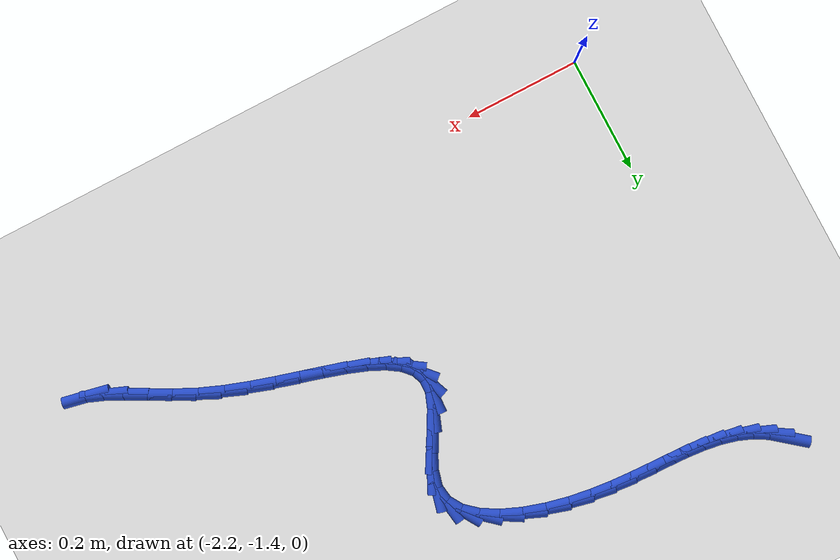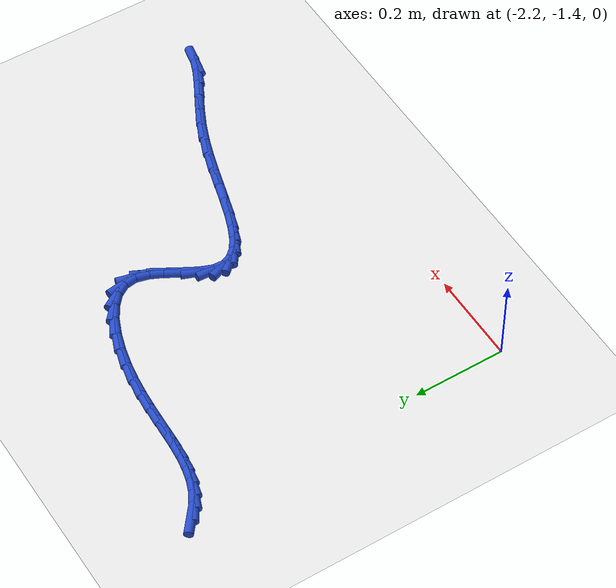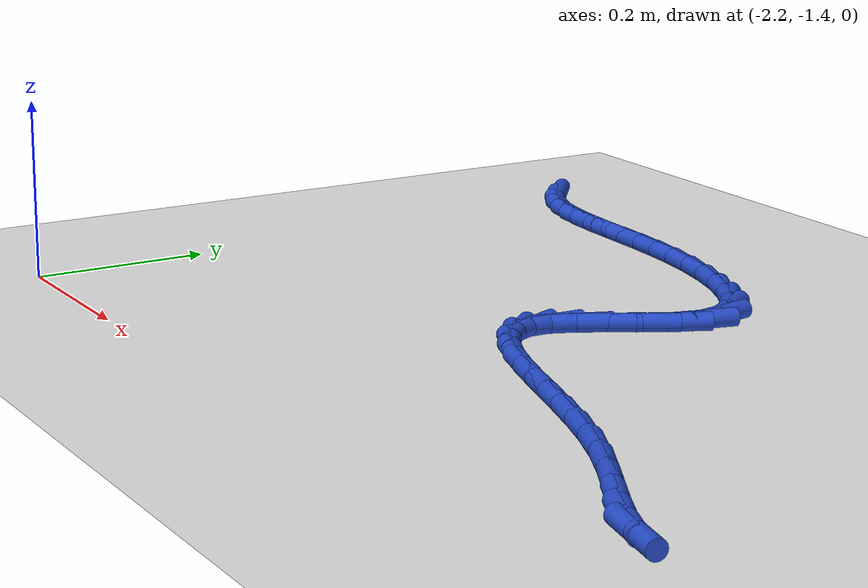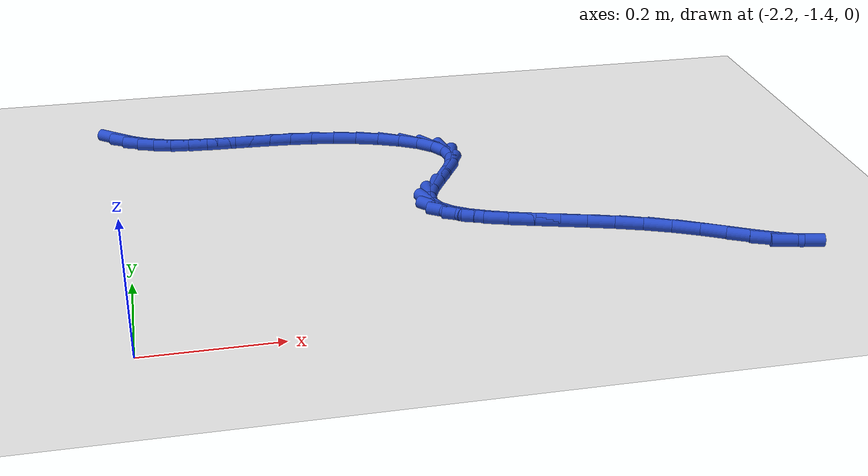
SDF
<sdf version="1.6">
 <world name="default">
  <model name="ground_plane">
   <static>1</static>
   <link name="link">
    <collision name="collision">
     <geometry><plane><normal>0 0 1</normal><size>100 100</size></plane></geometry>
     <surface><friction><ode><mu>100</mu><mu2>50</mu2></ode></friction></surface>
    </collision>
    <visual name="visual">
     <cast_shadows>0</cast_shadows>
     <geometry><plane><normal>0 0 1</normal><size>100 100</size></plane></geometry>
     <material>
      <script><uri>file://media/materials/scripts/gazebo.material</uri><name>Gazebo/WhiteGlow</name></script>
     </material>
    </visual>
   </link>
  </model>
  <model name="line">
   <link name="link_144">
    <pose>-2.215456086362121 -0.6869322025722284 0.01 0 1.57 -0.6803128797783314</pose>
    <collision name="collision">
     <geometry><cylinder><radius>0.01</radius><length>0.08</length></cylinder></geometry>
    </collision>
    <visual name="visual">
     <material>
      <script><name>Gazebo/Blue</name><uri>file://media/materials/scripts/gazebo.material</uri></script>
     </material>
     <geometry><cylinder><radius>0.01</radius><length>0.08</length></cylinder></geometry>
    </visual>
   </link>
   <link name="link_145">
    <pose>-2.193583747144123 -0.7046308398941936 0.01 0 1.57 -0.5238025363237142</pose>
    <collision name="collision">
     <geometry><cylinder><radius>0.01</radius><length>0.08</length></cylinder></geometry>
    </collision>
    <visual name="visual">
     <material>
      <script><name>Gazebo/Blue</name><uri>file://media/materials/scripts/gazebo.material</uri></script>
     </material>
     <geometry><cylinder><radius>0.01</radius><length>0.08</length></cylinder></geometry>
    </visual>
   </link>
   <link name="link_146">
    <pose>-2.169927128006402 -0.7182954231309067 0.01 0 1.57 -0.372703559304144</pose>
    <collision name="collision">
     <geometry><cylinder><radius>0.01</radius><length>0.08</length></cylinder></geometry>
    </collision>
    <visual name="visual">
     <material>
      <script><name>Gazebo/Blue</name><uri>file://media/materials/scripts/gazebo.material</uri></script>
     </material>
     <geometry><cylinder><radius>0.01</radius><length>0.08</length></cylinder></geometry>
    </visual>
   </link>
   <link name="link_147">
    <pose>-2.1445650753523373 -0.7282113950630461 0.01 0 1.57 -0.24759357513335906</pose>
    <collision name="collision">
     <geometry><cylinder><radius>0.01</radius><length>0.08</length></cylinder></geometry>
    </collision>
    <visual name="visual">
     <material>
      <script><name>Gazebo/Blue</name><uri>file://media/materials/scripts/gazebo.material</uri></script>
     </material>
     <geometry><cylinder><radius>0.01</radius><length>0.08</length></cylinder></geometry>
    </visual>
   </link>
   <link name="link_148">
    <pose>-2.117559276078067 -0.7350379255356329 0.01 0 1.57 -0.1527567664056015</pose>
    <collision name="collision">
     <geometry><cylinder><radius>0.01</radius><length>0.08</length></cylinder></geometry>
    </collision>
    <visual name="visual">
     <material>
      <script><name>Gazebo/Blue</name><uri>file://media/materials/scripts/gazebo.material</uri></script>
     </material>
     <geometry><cylinder><radius>0.01</radius><length>0.08</length></cylinder></geometry>
    </visual>
   </link>
   <link name="link_149">
    <pose>-2.088971185064976 -0.7394392375803858 0.01 0 1.57 -0.08746840076644627</pose>
    <collision name="collision">
     <geometry><cylinder><radius>0.01</radius><length>0.08</length></cylinder></geometry>
    </collision>
    <visual name="visual">
     <material>
      <script><name>Gazebo/Blue</name><uri>file://media/materials/scripts/gazebo.material</uri></script>
     </material>
     <geometry><cylinder><radius>0.01</radius><length>0.08</length></cylinder></geometry>
    </visual>
   </link>
   <link name="link_150">
    <pose>-2.058862257194445 -0.7420795542290238 0.01 0 1.57 -0.04885646311759033</pose>
    <collision name="collision">
     <geometry><cylinder><radius>0.01</radius><length>0.08</length></cylinder></geometry>
    </collision>
    <visual name="visual">
     <material>
      <script><name>Gazebo/Blue</name><uri>file://media/materials/scripts/gazebo.material</uri></script>
     </material>
     <geometry><cylinder><radius>0.01</radius><length>0.08</length></cylinder></geometry>
    </visual>
   </link>
   <link name="link_151">
    <pose>-2.027293947347857 -0.7436230985132661 0.01 0 1.57 -0.03368824391982004</pose>
    <collision name="collision">
     <geometry><cylinder><radius>0.01</radius><length>0.08</length></cylinder></geometry>
    </collision>
    <visual name="visual">
     <material>
      <script><name>Gazebo/Blue</name><uri>file://media/materials/scripts/gazebo.material</uri></script>
     </material>
     <geometry><cylinder><radius>0.01</radius><length>0.08</length></cylinder></geometry>
    </visual>
   </link>
   <link name="link_152">
    <pose>-1.994327710406596 -0.7447340934648318 0.01 0 1.57 -0.03912179598383189</pose>
    <collision name="collision">
     <geometry><cylinder><radius>0.01</radius><length>0.08</length></cylinder></geometry>
    </collision>
    <visual name="visual">
     <material>
      <script><name>Gazebo/Blue</name><uri>file://media/materials/scripts/gazebo.material</uri></script>
     </material>
     <geometry><cylinder><radius>0.01</radius><length>0.08</length></cylinder></geometry>
    </visual>
   </link>
   <link name="link_153">
    <pose>-1.9600250012520442 -0.7460767621154396 0.01 0 1.57 -0.06283758000488113</pose>
    <collision name="collision">
     <geometry><cylinder><radius>0.01</radius><length>0.08</length></cylinder></geometry>
    </collision>
    <visual name="visual">
     <material>
      <script><name>Gazebo/Blue</name><uri>file://media/materials/scripts/gazebo.material</uri></script>
     </material>
     <geometry><cylinder><radius>0.01</radius><length>0.08</length></cylinder></geometry>
    </visual>
   </link>
   <link name="link_154">
    <pose>-1.924447274765584 -0.7483153274968087 0.01 0 1.57 -0.10288501286515214</pose>
    <collision name="collision">
     <geometry><cylinder><radius>0.01</radius><length>0.08</length></cylinder></geometry>
    </collision>
    <visual name="visual">
     <material>
      <script><name>Gazebo/Blue</name><uri>file://media/materials/scripts/gazebo.material</uri></script>
     </material>
     <geometry><cylinder><radius>0.01</radius><length>0.08</length></cylinder></geometry>
    </visual>
   </link>
   <link name="link_155">
    <pose>-1.8876559858285988 -0.7521140126406582 0.01 0 1.57 -0.15742337600626916</pose>
    <collision name="collision">
     <geometry><cylinder><radius>0.01</radius><length>0.08</length></cylinder></geometry>
    </collision>
    <visual name="visual">
     <material>
      <script><name>Gazebo/Blue</name><uri>file://media/materials/scripts/gazebo.material</uri></script>
     </material>
     <geometry><cylinder><radius>0.01</radius><length>0.08</length></cylinder></geometry>
    </visual>
   </link>
   <link name="link_156">
    <pose>-1.8497126623891103 -0.7581370153663469 0.01 0 1.57 -0.2233830736094657</pose>
    <collision name="collision">
     <geometry><cylinder><radius>0.01</radius><length>0.08</length></cylinder></geometry>
    </collision>
    <visual name="visual">
     <material>
      <script><name>Gazebo/Blue</name><uri>file://media/materials/scripts/gazebo.material</uri></script>
     </material>
     <geometry><cylinder><radius>0.01</radius><length>0.08</length></cylinder></geometry>
    </visual>
   </link>
   <link name="link_157">
    <pose>-1.8110523506170368 -0.7669196473705909 0.01 0 1.57 -0.2996834063995351</pose>
    <collision name="collision">
     <geometry><cylinder><radius>0.01</radius><length>0.08</length></cylinder></geometry>
    </collision>
    <visual name="visual">
     <material>
      <script><name>Gazebo/Blue</name><uri>file://media/materials/scripts/gazebo.material</uri></script>
     </material>
     <geometry><cylinder><radius>0.01</radius><length>0.08</length></cylinder></geometry>
    </visual>
   </link>
   <link name="link_158">
    <pose>-1.7733529294045047 -0.778568368740549 0.01 0 1.57 -0.39555358926352757</pose>
    <collision name="collision">
     <geometry><cylinder><radius>0.01</radius><length>0.08</length></cylinder></geometry>
    </collision>
    <visual name="visual">
     <material>
      <script><name>Gazebo/Blue</name><uri>file://media/materials/scripts/gazebo.material</uri></script>
     </material>
     <geometry><cylinder><radius>0.01</radius><length>0.08</length></cylinder></geometry>
    </visual>
   </link>
   <link name="link_159">
    <pose>-1.7385504474257985 -0.7931005555501898 0.01 0 1.57 -0.5268492853697296</pose>
    <collision name="collision">
     <geometry><cylinder><radius>0.01</radius><length>0.08</length></cylinder></geometry>
    </collision>
    <visual name="visual">
     <material>
      <script><name>Gazebo/Blue</name><uri>file://media/materials/scripts/gazebo.material</uri></script>
     </material>
     <geometry><cylinder><radius>0.01</radius><length>0.08</length></cylinder></geometry>
    </visual>
   </link>
   <link name="link_160">
    <pose>-1.7085809533552017 -0.8105335838734826 0.01 0 1.57 -0.7200698999718345</pose>
    <collision name="collision">
     <geometry><cylinder><radius>0.01</radius><length>0.08</length></cylinder></geometry>
    </collision>
    <visual name="visual">
     <material>
      <script><name>Gazebo/Blue</name><uri>file://media/materials/scripts/gazebo.material</uri></script>
     </material>
     <geometry><cylinder><radius>0.01</radius><length>0.08</length></cylinder></geometry>
    </visual>
   </link>
   <link name="link_161">
    <pose>-1.6853804958669993 -0.8308848297843958 0.01 0 1.57 -1.0140179977187882</pose>
    <collision name="collision">
     <geometry><cylinder><radius>0.01</radius><length>0.08</length></cylinder></geometry>
    </collision>
    <visual name="visual">
     <material>
      <script><name>Gazebo/Blue</name><uri>file://media/materials/scripts/gazebo.material</uri></script>
     </material>
     <geometry><cylinder><radius>0.01</radius><length>0.08</length></cylinder></geometry>
    </visual>
   </link>
   <link name="link_162">
    <pose>-1.6708851236354754 -0.8541716693568985 0.01 0 1.57 -1.4248548940295063</pose>
    <collision name="collision">
     <geometry><cylinder><radius>0.01</radius><length>0.08</length></cylinder></geometry>
    </collision>
    <visual name="visual">
     <material>
      <script><name>Gazebo/Blue</name><uri>file://media/materials/scripts/gazebo.material</uri></script>
     </material>
     <geometry><cylinder><radius>0.01</radius><length>0.08</length></cylinder></geometry>
    </visual>
   </link>
   <link name="link_163">
    <pose>-1.6670283087497728 -0.880410920814642 0.01 0 1.57 1.3270318718827252</pose>
    <collision name="collision">
     <geometry><cylinder><radius>0.01</radius><length>0.08</length></cylinder></geometry>
    </collision>
    <visual name="visual">
     <material>
      <script><name>Gazebo/Blue</name><uri>file://media/materials/scripts/gazebo.material</uri></script>
     </material>
     <geometry><cylinder><radius>0.01</radius><length>0.08</length></cylinder></geometry>
    </visual>
   </link>
   <link name="link_164">
    <pose>-1.674210192509333 -0.9092874245806858 0.01 0 1.57 1.124532986328436</pose>
    <collision name="collision">
     <geometry><cylinder><radius>0.01</radius><length>0.08</length></cylinder></geometry>
    </collision>
    <visual name="visual">
     <material>
      <script><name>Gazebo/Blue</name><uri>file://media/materials/scripts/gazebo.material</uri></script>
     </material>
     <geometry><cylinder><radius>0.01</radius><length>0.08</length></cylinder></geometry>
    </visual>
   </link>
   <link name="link_165">
    <pose>-1.6887104771704313 -0.939593914625777 0.01 0 1.57 1.0503396304637584</pose>
    <collision name="collision">
     <geometry><cylinder><radius>0.01</radius><length>0.08</length></cylinder></geometry>
    </collision>
    <visual name="visual">
     <material>
      <script><name>Gazebo/Blue</name><uri>file://media/materials/scripts/gazebo.material</uri></script>
     </material>
     <geometry><cylinder><radius>0.01</radius><length>0.08</length></cylinder></geometry>
    </visual>
   </link>
   <link name="link_166">
    <pose>-1.7061238485273933 -0.9699748136365401 0.01 0 1.57 1.070164313182191</pose>
    <collision name="collision">
     <geometry><cylinder><radius>0.01</radius><length>0.08</length></cylinder></geometry>
    </collision>
    <visual name="visual">
     <material>
      <script><name>Gazebo/Blue</name><uri>file://media/materials/scripts/gazebo.material</uri></script>
     </material>
     <geometry><cylinder><radius>0.01</radius><length>0.08</length></cylinder></geometry>
    </visual>
   </link>
   <link name="link_167">
    <pose>-1.7220449923745431 -0.9990745442995981 0.01 0 1.57 1.2086842614614175</pose>
    <collision name="collision">
     <geometry><cylinder><radius>0.01</radius><length>0.08</length></cylinder></geometry>
    </collision>
    <visual name="visual">
     <material>
      <script><name>Gazebo/Blue</name><uri>file://media/materials/scripts/gazebo.material</uri></script>
     </material>
     <geometry><cylinder><radius>0.01</radius><length>0.08</length></cylinder></geometry>
    </visual>
   </link>
   <link name="link_168">
    <pose>-1.7320697487752683 -1.0255379313455664 0.01 0 1.57 1.5294363649540346</pose>
    <collision name="collision">
     <geometry><cylinder><radius>0.01</radius><length>0.08</length></cylinder></geometry>
    </collision>
    <visual name="visual">
     <material>
      <script><name>Gazebo/Blue</name><uri>file://media/materials/scripts/gazebo.material</uri></script>
     </material>
     <geometry><cylinder><radius>0.01</radius><length>0.08</length></cylinder></geometry>
    </visual>
   </link>
   <link name="link_169">
    <pose>-1.733017349089324 -1.0484359194940769 0.01 0 1.57 -1.1942467539589192</pose>
    <collision name="collision">
     <geometry><cylinder><radius>0.01</radius><length>0.08</length></cylinder></geometry>
    </collision>
    <visual name="visual">
     <material>
      <script><name>Gazebo/Blue</name><uri>file://media/materials/scripts/gazebo.material</uri></script>
     </material>
     <geometry><cylinder><radius>0.01</radius><length>0.08</length></cylinder></geometry>
    </visual>
   </link>
   <link name="link_170">
    <pose>-1.7252520266886908 -1.068074214757407 0.01 0 1.57 -0.8295630594231932</pose>
    <collision name="collision">
     <geometry><cylinder><radius>0.01</radius><length>0.08</length></cylinder></geometry>
    </collision>
    <visual name="visual">
     <material>
      <script><name>Gazebo/Blue</name><uri>file://media/materials/scripts/gazebo.material</uri></script>
     </material>
     <geometry><cylinder><radius>0.01</radius><length>0.08</length></cylinder></geometry>
    </visual>
   </link>
   <link name="link_171">
    <pose>-1.709776438644878 -1.0849808928022835 0.01 0 1.57 -0.5853244645624193</pose>
    <collision name="collision">
     <geometry><cylinder><radius>0.01</radius><length>0.08</length></cylinder></geometry>
    </collision>
    <visual name="visual">
     <material>
      <script><name>Gazebo/Blue</name><uri>file://media/materials/scripts/gazebo.material</uri></script>
     </material>
     <geometry><cylinder><radius>0.01</radius><length>0.08</length></cylinder></geometry>
    </visual>
   </link>
   <link name="link_172">
    <pose>-1.6875932420293969 -1.0996840292954357 0.01 0 1.57 -0.43701580773727555</pose>
    <collision name="collision">
     <geometry><cylinder><radius>0.01</radius><length>0.08</length></cylinder></geometry>
    </collision>
    <visual name="visual">
     <material>
      <script><name>Gazebo/Blue</name><uri>file://media/materials/scripts/gazebo.material</uri></script>
     </material>
     <geometry><cylinder><radius>0.01</radius><length>0.08</length></cylinder></geometry>
    </visual>
   </link>
   <link name="link_173">
    <pose>-1.6597050939137559 -1.1127116999035902 0.01 0 1.57 -0.34956238631951553</pose>
    <collision name="collision">
     <geometry><cylinder><radius>0.01</radius><length>0.08</length></cylinder></geometry>
    </collision>
    <visual name="visual">
     <material>
      <script><name>Gazebo/Blue</name><uri>file://media/materials/scripts/gazebo.material</uri></script>
     </material>
     <geometry><cylinder><radius>0.01</radius><length>0.08</length></cylinder></geometry>
    </visual>
   </link>
   <link name="link_174">
    <pose>-1.627114651369467 -1.1245919802934758 0.01 0 1.57 -0.30088321646806393</pose>
    <collision name="collision">
     <geometry><cylinder><radius>0.01</radius><length>0.08</length></cylinder></geometry>
    </collision>
    <visual name="visual">
     <material>
      <script><name>Gazebo/Blue</name><uri>file://media/materials/scripts/gazebo.material</uri></script>
     </material>
     <geometry><cylinder><radius>0.01</radius><length>0.08</length></cylinder></geometry>
    </visual>
   </link>
   <link name="link_175">
    <pose>-1.5908245714680385 -1.1358529461318196 0.01 0 1.57 -0.2790243637579328</pose>
    <collision name="collision">
     <geometry><cylinder><radius>0.01</radius><length>0.08</length></cylinder></geometry>
    </collision>
    <visual name="visual">
     <material>
      <script><name>Gazebo/Blue</name><uri>file://media/materials/scripts/gazebo.material</uri></script>
     </material>
     <geometry><cylinder><radius>0.01</radius><length>0.08</length></cylinder></geometry>
    </visual>
   </link>
   <link name="link_176">
    <pose>-1.5518375112809815 -1.1470226730853492 0.01 0 1.57 -0.27792035001653514</pose>
    <collision name="collision">
     <geometry><cylinder><radius>0.01</radius><length>0.08</length></cylinder></geometry>
    </collision>
    <visual name="visual">
     <material>
      <script><name>Gazebo/Blue</name><uri>file://media/materials/scripts/gazebo.material</uri></script>
     </material>
     <geometry><cylinder><radius>0.01</radius><length>0.08</length></cylinder></geometry>
    </visual>
   </link>
   <link name="link_177">
    <pose>-1.511156127879804 -1.158629236820793 0.01 0 1.57 -0.29499123795129634</pose>
    <collision name="collision">
     <geometry><cylinder><radius>0.01</radius><length>0.08</length></cylinder></geometry>
    </collision>
    <visual name="visual">
     <material>
      <script><name>Gazebo/Blue</name><uri>file://media/materials/scripts/gazebo.material</uri></script>
     </material>
     <geometry><cylinder><radius>0.01</radius><length>0.08</length></cylinder></geometry>
    </visual>
   </link>
   <link name="link_178">
    <pose>-1.4697830783360175 -1.1712007130048794 0.01 0 1.57 -0.32999320201386717</pose>
    <collision name="collision">
     <geometry><cylinder><radius>0.01</radius><length>0.08</length></cylinder></geometry>
    </collision>
    <visual name="visual">
     <material>
      <script><name>Gazebo/Blue</name><uri>file://media/materials/scripts/gazebo.material</uri></script>
     </material>
     <geometry><cylinder><radius>0.01</radius><length>0.08</length></cylinder></geometry>
    </visual>
   </link>
   <link name="link_179">
    <pose>-1.4287210197211317 -1.1852651773043348 0.01 0 1.57 -0.38452021041405443</pose>
    <collision name="collision">
     <geometry><cylinder><radius>0.01</radius><length>0.08</length></cylinder></geometry>
    </collision>
    <visual name="visual">
     <material>
      <script><name>Gazebo/Blue</name><uri>file://media/materials/scripts/gazebo.material</uri></script>
     </material>
     <geometry><cylinder><radius>0.01</radius><length>0.08</length></cylinder></geometry>
    </visual>
   </link>
   <link name="link_180">
    <pose>-1.3889723183459866 -1.2013500282753566 0.01 0 1.57 -0.4487178662142483</pose>
    <collision name="collision">
     <geometry><cylinder><radius>0.01</radius><length>0.08</length></cylinder></geometry>
    </collision>
    <visual name="visual">
     <material>
      <script><name>Gazebo/Blue</name><uri>file://media/materials/scripts/gazebo.material</uri></script>
     </material>
     <geometry><cylinder><radius>0.01</radius><length>0.08</length></cylinder></geometry>
    </visual>
   </link>
   <link name="link_181">
    <pose>-1.3513224176731133 -1.2194775041800208 0.01 0 1.57 -0.48838833460879866</pose>
    <collision name="collision">
     <geometry><cylinder><radius>0.01</radius><length>0.08</length></cylinder></geometry>
    </collision>
    <visual name="visual">
     <material>
      <script><name>Gazebo/Blue</name><uri>file://media/materials/scripts/gazebo.material</uri></script>
     </material>
     <geometry><cylinder><radius>0.01</radius><length>0.08</length></cylinder></geometry>
    </visual>
   </link>
   <link name="link_182">
    <pose>-1.3159551477319686 -1.238268832639232 0.01 0 1.57 -0.49544324186117183</pose>
    <collision name="collision">
     <geometry><cylinder><radius>0.01</radius><length>0.08</length></cylinder></geometry>
    </collision>
    <visual name="visual">
     <material>
      <script><name>Gazebo/Blue</name><uri>file://media/materials/scripts/gazebo.material</uri></script>
     </material>
     <geometry><cylinder><radius>0.01</radius><length>0.08</length></cylinder></geometry>
    </visual>
   </link>
   <link name="link_183">
    <pose>-1.2829508945302532 -1.2561043454306817 0.01 0 1.57 -0.463113546103148</pose>
    <collision name="collision">
     <geometry><cylinder><radius>0.01</radius><length>0.08</length></cylinder></geometry>
    </collision>
    <visual name="visual">
     <material>
      <script><name>Gazebo/Blue</name><uri>file://media/materials/scripts/gazebo.material</uri></script>
     </material>
     <geometry><cylinder><radius>0.01</radius><length>0.08</length></cylinder></geometry>
    </visual>
   </link>
   <link name="link_184">
    <pose>-1.2523900440756663 -1.2713643743320606 0.01 0 1.57 -0.37588737187052756</pose>
    <collision name="collision">
     <geometry><cylinder><radius>0.01</radius><length>0.08</length></cylinder></geometry>
    </collision>
    <visual name="visual">
     <material>
      <script><name>Gazebo/Blue</name><uri>file://media/materials/scripts/gazebo.material</uri></script>
     </material>
     <geometry><cylinder><radius>0.01</radius><length>0.08</length></cylinder></geometry>
    </visual>
   </link>
   <link name="link_185">
    <pose>-1.2243529823759085 -1.28242925112106 0.01 0 1.57 -0.20356848658141347</pose>
    <collision name="collision">
     <geometry><cylinder><radius>0.01</radius><length>0.08</length></cylinder></geometry>
    </collision>
    <visual name="visual">
     <material>
      <script><name>Gazebo/Blue</name><uri>file://media/materials/scripts/gazebo.material</uri></script>
     </material>
     <geometry><cylinder><radius>0.01</radius><length>0.08</length></cylinder></geometry>
    </visual>
   </link>
  </model>
 </world>
</sdf>
